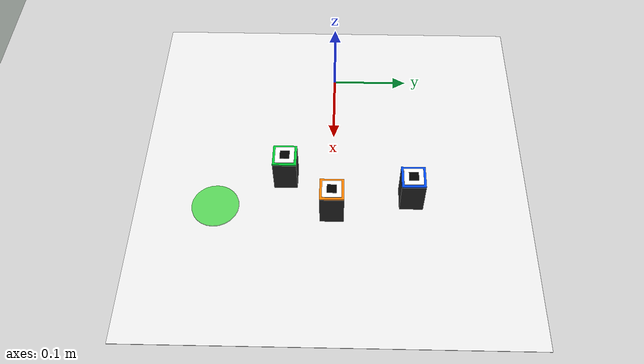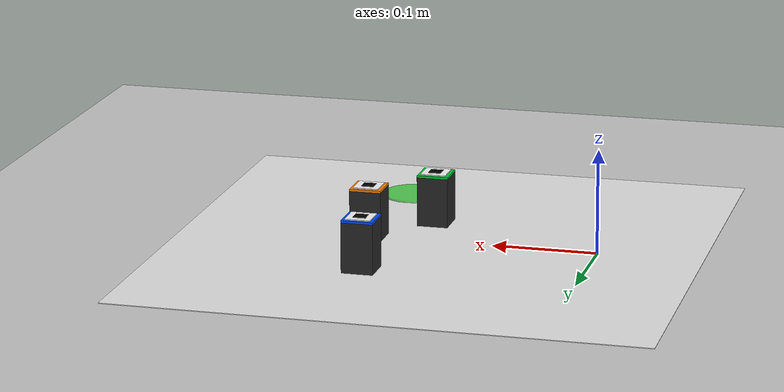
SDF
<?xml version="1.0" ?>
<sdf version="1.6">
  <world name="default">

    <!-- Lighting -->
    <light name="sun" type="directional">
      <cast_shadows>1</cast_shadows>
      <pose frame="">0 0 10 0 -0 0</pose>
      <diffuse>0.8 0.8 0.8 1</diffuse>
      <specular>0.2 0.2 0.2 1</specular>
      <attenuation>
        <range>1000</range>
        <constant>0.9</constant>
        <linear>0.01</linear>
        <quadratic>0.001</quadratic>
      </attenuation>
      <direction>-0.5 0.1 -0.9</direction>
    </light>

    <!-- Physics -->
    <physics name="default_physics" default="0" type="ode">
      <max_step_size>0.001</max_step_size>
      <real_time_factor>1</real_time_factor>
      <real_time_update_rate>1000</real_time_update_rate>
    </physics>

    <scene>
      <ambient>0.8 0.8 0.8 1</ambient>
      <background>0.7 0.7 0.7 1</background>
      <shadows>false</shadows>
    </scene>

    <!-- Ground plane -->
    <model name="ground_plane">
      <static>1</static>
      <link name="link">
        <collision name="collision">
          <geometry>
            <plane>
              <normal>0 0 1</normal>
              <size>100 100</size>
            </plane>
          </geometry>
          <surface>
            <friction>
              <ode>
                <mu>100</mu>
                <mu2>50</mu2>
              </ode>
            </friction>
          </surface>
        </collision>
        <visual name="visual">
          <cast_shadows>0</cast_shadows>
          <geometry>
            <plane>
              <normal>0 0 1</normal>
              <size>100 100</size>
            </plane>
          </geometry>
          <material>
            <script>
              <uri>file://media/materials/scripts/gazebo.material</uri>
              <name>Gazebo/Grey</name>
            </script>
          </material>
        </visual>
      </link>
    </model>

    <!-- Workspace table surface (flat white slab) -->
    <model name="workspace_table">
      <static>1</static>
      <!-- Thin slab centred under the arm's reachable workspace -->
      <pose frame="">0.15 0.0 -0.005 0 0 0</pose>
      <link name="link">
        <collision name="collision">
          <geometry>
            <box><size>0.50 0.50 0.010</size></box>
          </geometry>
        </collision>
        <visual name="visual">
          <geometry>
            <box><size>0.50 0.50 0.010</size></box>
          </geometry>
          <material>
            <script>
              <uri>file://media/materials/scripts/gazebo.material</uri>
              <name>Gazebo/White</name>
            </script>
          </material>
        </visual>
      </link>
    </model>

    <model name="apriltag_cube">
      <pose frame="">0.22 0.0 0.025 0 0 0</pose>
      <static>0</static>
      <link name="link">
        <inertial>
          <mass>0.02</mass>
          <inertia>
            <ixx>2.67e-6</ixx><ixy>0</ixy><ixz>0</ixz>
            <iyy>2.67e-6</iyy><iyz>0</iyz>
            <izz>2.67e-6</izz>
          </inertia>
        </inertial>
        <collision name="collision">
          <geometry>
            <box><size>0.03 0.03 0.05</size></box>
          </geometry>
          <surface>
            <friction>
              <ode><mu>3.0</mu><mu2>3.0</mu2></ode>
            </friction>
          </surface>
        </collision>
        <!-- Body: dark grey -->
        <visual name="body">
          <geometry>
            <box><size>0.03 0.03 0.048</size></box>
          </geometry>
          <pose frame="">0 0 -0.001 0 0 0</pose>
          <material>
            <ambient>0.15 0.15 0.15 1</ambient>
            <diffuse>0.15 0.15 0.15 1</diffuse>
          </material>
        </visual>
        <!-- Top face: bright orange -->
        <visual name="top_face">
          <geometry>
            <box><size>0.03 0.03 0.002</size></box>
          </geometry>
          <pose frame="">0 0 0.024 0 0 0</pose>
          <material>
            <ambient>1.0 0.5 0.0 1</ambient>
            <diffuse>1.0 0.5 0.0 1</diffuse>
          </material>
        </visual>
        <!-- White label strip -->
        <visual name="tag_border">
          <geometry>
            <box><size>0.024 0.024 0.001</size></box>
          </geometry>
          <pose frame="">0 0 0.0255 0 0 0</pose>
          <material>
            <ambient>1 1 1 1</ambient>
            <diffuse>1 1 1 1</diffuse>
          </material>
        </visual>
        <!-- Black inner square -->
        <visual name="tag_center">
          <geometry>
            <box><size>0.012 0.012 0.001</size></box>
          </geometry>
          <pose frame="">0 0 0.026 0 0 0</pose>
          <material>
            <ambient>0 0 0 1</ambient>
            <diffuse>0 0 0 1</diffuse>
          </material>
        </visual>
      </link>
    </model>

    <model name="apriltag_cube_2">
      <pose frame="">0.20 0.10 0.025 0 0 0</pose>
      <static>0</static>
      <link name="link">
        <inertial>
          <mass>0.02</mass>
          <inertia>
            <ixx>2.67e-6</ixx><ixy>0</ixy><ixz>0</ixz>
            <iyy>2.67e-6</iyy><iyz>0</iyz>
            <izz>2.67e-6</izz>
          </inertia>
        </inertial>
        <collision name="collision">
          <geometry>
            <box><size>0.03 0.03 0.05</size></box>
          </geometry>
          <surface>
            <friction>
              <ode><mu>3.0</mu><mu2>3.0</mu2></ode>
            </friction>
          </surface>
        </collision>
        <!-- Body: dark grey -->
        <visual name="body">
          <geometry>
            <box><size>0.03 0.03 0.048</size></box>
          </geometry>
          <pose frame="">0 0 -0.001 0 0 0</pose>
          <material>
            <ambient>0.15 0.15 0.15 1</ambient>
            <diffuse>0.15 0.15 0.15 1</diffuse>
          </material>
        </visual>
        <!-- Top face: blue -->
        <visual name="top_face">
          <geometry>
            <box><size>0.03 0.03 0.002</size></box>
          </geometry>
          <pose frame="">0 0 0.024 0 0 0</pose>
          <material>
            <ambient>0.0 0.3 1.0 1</ambient>
            <diffuse>0.0 0.3 1.0 1</diffuse>
          </material>
        </visual>
        <!-- White label strip -->
        <visual name="tag_border">
          <geometry>
            <box><size>0.024 0.024 0.001</size></box>
          </geometry>
          <pose frame="">0 0 0.0255 0 0 0</pose>
          <material>
            <ambient>1 1 1 1</ambient>
            <diffuse>1 1 1 1</diffuse>
          </material>
        </visual>
        <!-- Black inner square -->
        <visual name="tag_center">
          <geometry>
            <box><size>0.012 0.012 0.001</size></box>
          </geometry>
          <pose frame="">0 0 0.026 0 0 0</pose>
          <material>
            <ambient>0 0 0 1</ambient>
            <diffuse>0 0 0 1</diffuse>
          </material>
        </visual>
      </link>
    </model>

    <model name="apriltag_cube_3">
      <pose frame="">0.17 -0.06 0.025 0 0 0</pose>
      <static>0</static>
      <link name="link">
        <inertial>
          <mass>0.02</mass>
          <inertia>
            <ixx>2.67e-6</ixx><ixy>0</ixy><ixz>0</ixz>
            <iyy>2.67e-6</iyy><iyz>0</iyz>
            <izz>2.67e-6</izz>
          </inertia>
        </inertial>
        <collision name="collision">
          <geometry>
            <box><size>0.03 0.03 0.05</size></box>
          </geometry>
          <surface>
            <friction>
              <ode><mu>3.0</mu><mu2>3.0</mu2></ode>
            </friction>
          </surface>
        </collision>
        <!-- Body: dark grey -->
        <visual name="body">
          <geometry>
            <box><size>0.03 0.03 0.048</size></box>
          </geometry>
          <pose frame="">0 0 -0.001 0 0 0</pose>
          <material>
            <ambient>0.15 0.15 0.15 1</ambient>
            <diffuse>0.15 0.15 0.15 1</diffuse>
          </material>
        </visual>
        <!-- Top face: green -->
        <visual name="top_face">
          <geometry>
            <box><size>0.03 0.03 0.002</size></box>
          </geometry>
          <pose frame="">0 0 0.024 0 0 0</pose>
          <material>
            <ambient>0.0 0.8 0.2 1</ambient>
            <diffuse>0.0 0.8 0.2 1</diffuse>
          </material>
        </visual>
        <!-- White label strip -->
        <visual name="tag_border">
          <geometry>
            <box><size>0.024 0.024 0.001</size></box>
          </geometry>
          <pose frame="">0 0 0.0255 0 0 0</pose>
          <material>
            <ambient>1 1 1 1</ambient>
            <diffuse>1 1 1 1</diffuse>
          </material>
        </visual>
        <!-- Black inner square -->
        <visual name="tag_center">
          <geometry>
            <box><size>0.012 0.012 0.001</size></box>
          </geometry>
          <pose frame="">0 0 0.026 0 0 0</pose>
          <material>
            <ambient>0 0 0 1</ambient>
            <diffuse>0 0 0 1</diffuse>
          </material>
        </visual>
      </link>
    </model>

    <!-- Place goal marker — shows WHERE the arm will place the object.
         Matches PLACE_GOAL = [0.15, -0.10, 0.02] in pick_place.py.
         Static — does not move. -->
    <model name="place_goal_marker">
      <static>1</static>
      <pose frame="">0.215 -0.148 0.001 0 0 0</pose>
      <link name="link">
        <visual name="visual">
          <geometry>
            <cylinder><radius>0.03</radius><length>0.002</length></cylinder>
          </geometry>
          <material>
            <ambient>0.0 0.8 0.0 0.6</ambient>
            <diffuse>0.0 0.8 0.0 0.6</diffuse>
          </material>
        </visual>
      </link>
    </model>

  </world>
</sdf>
